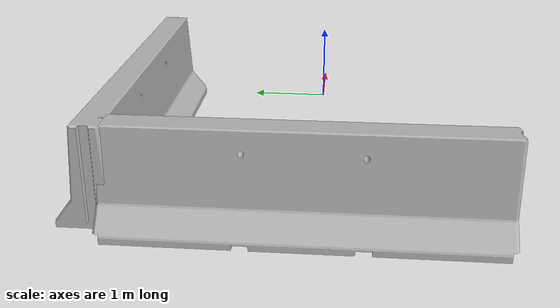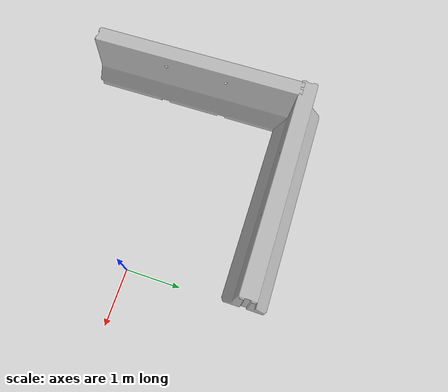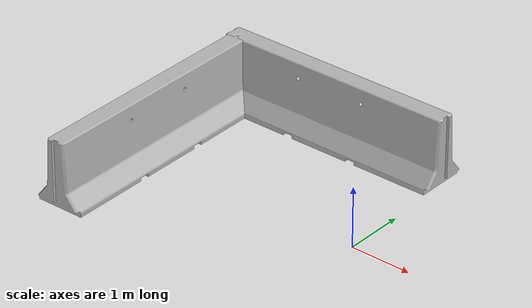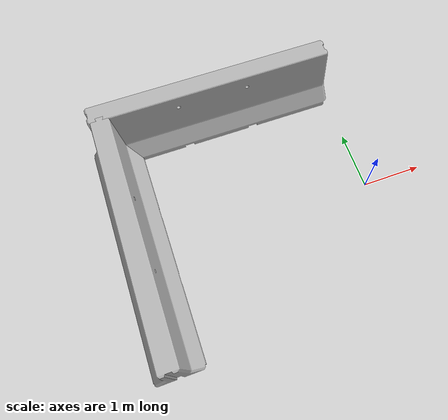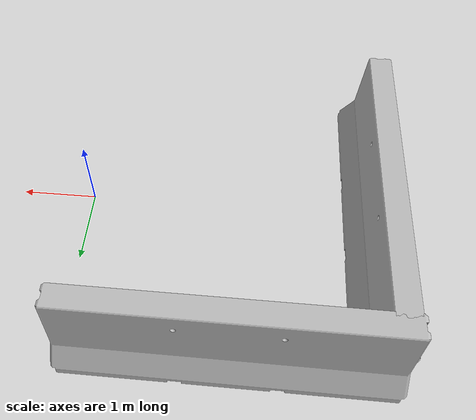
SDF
<sdf version="1.6">
 <world name="default">
  <model name="jersey_barrier_0_clone_1">
   <static>1</static>
   <link name="link">
    <visual name="visual">
     <geometry>
      <mesh><uri>model://jersey_barrier/meshes/jersey_barrier.dae</uri><scale>1 1 1</scale></mesh>
     </geometry>
    </visual>
    <collision name="upright">
     <pose>0 0 0.5715 0 -0 0</pose>
     <geometry><box><size>4.06542 0.3063 1.143</size></box></geometry>
    </collision>
    <collision name="base">
     <pose>0 0 0.032258 0 -0 0</pose>
     <geometry><box><size>4.06542 0.8107 0.064516</size></box></geometry>
    </collision>
    <collision name="base2">
     <pose>0 0 0.1 0 -0 0</pose>
     <geometry><box><size>4.06542 0.65 0.1</size></box></geometry>
    </collision>
    <collision name="base3">
     <pose>0 0 0.2 0 -0 0</pose>
     <geometry><box><size>4.06542 0.5 0.1</size></box></geometry>
    </collision>
    <collision name="left-angle">
     <pose>0 -0.224 0.2401 0.9 -0 0</pose>
     <geometry><box><size>4.06542 0.5 0.064516</size></box></geometry>
    </collision>
    <collision name="right-angle">
     <pose>0 0.224 0.2401 -0.9 0 0</pose>
     <geometry><box><size>4.06542 0.5 0.064516</size></box></geometry>
    </collision>
   </link>
   <pose>-2.03741 2.15579 0 0 -0 0</pose>
  </model>
  <model name="jersey_barrier_0_clone_2">
   <static>1</static>
   <link name="link">
    <visual name="visual">
     <geometry>
      <mesh><uri>model://jersey_barrier/meshes/jersey_barrier.dae</uri><scale>1 1 1</scale></mesh>
     </geometry>
    </visual>
    <collision name="upright">
     <pose>0 0 0.5715 0 -0 0</pose>
     <geometry><box><size>4.06542 0.3063 1.143</size></box></geometry>
    </collision>
    <collision name="base">
     <pose>0 0 0.032258 0 -0 0</pose>
     <geometry><box><size>4.06542 0.8107 0.064516</size></box></geometry>
    </collision>
    <collision name="base2">
     <pose>0 0 0.1 0 -0 0</pose>
     <geometry><box><size>4.06542 0.65 0.1</size></box></geometry>
    </collision>
    <collision name="base3">
     <pose>0 0 0.2 0 -0 0</pose>
     <geometry><box><size>4.06542 0.5 0.1</size></box></geometry>
    </collision>
    <collision name="left-angle">
     <pose>0 -0.224 0.2401 0.9 -0 0</pose>
     <geometry><box><size>4.06542 0.5 0.064516</size></box></geometry>
    </collision>
    <collision name="right-angle">
     <pose>0 0.224 0.2401 -0.9 0 0</pose>
     <geometry><box><size>4.06542 0.5 0.064516</size></box></geometry>
    </collision>
   </link>
   <pose>-3.8692 0.068536 0 0 0 -1.56593</pose>
  </model>
 </world>
</sdf>
